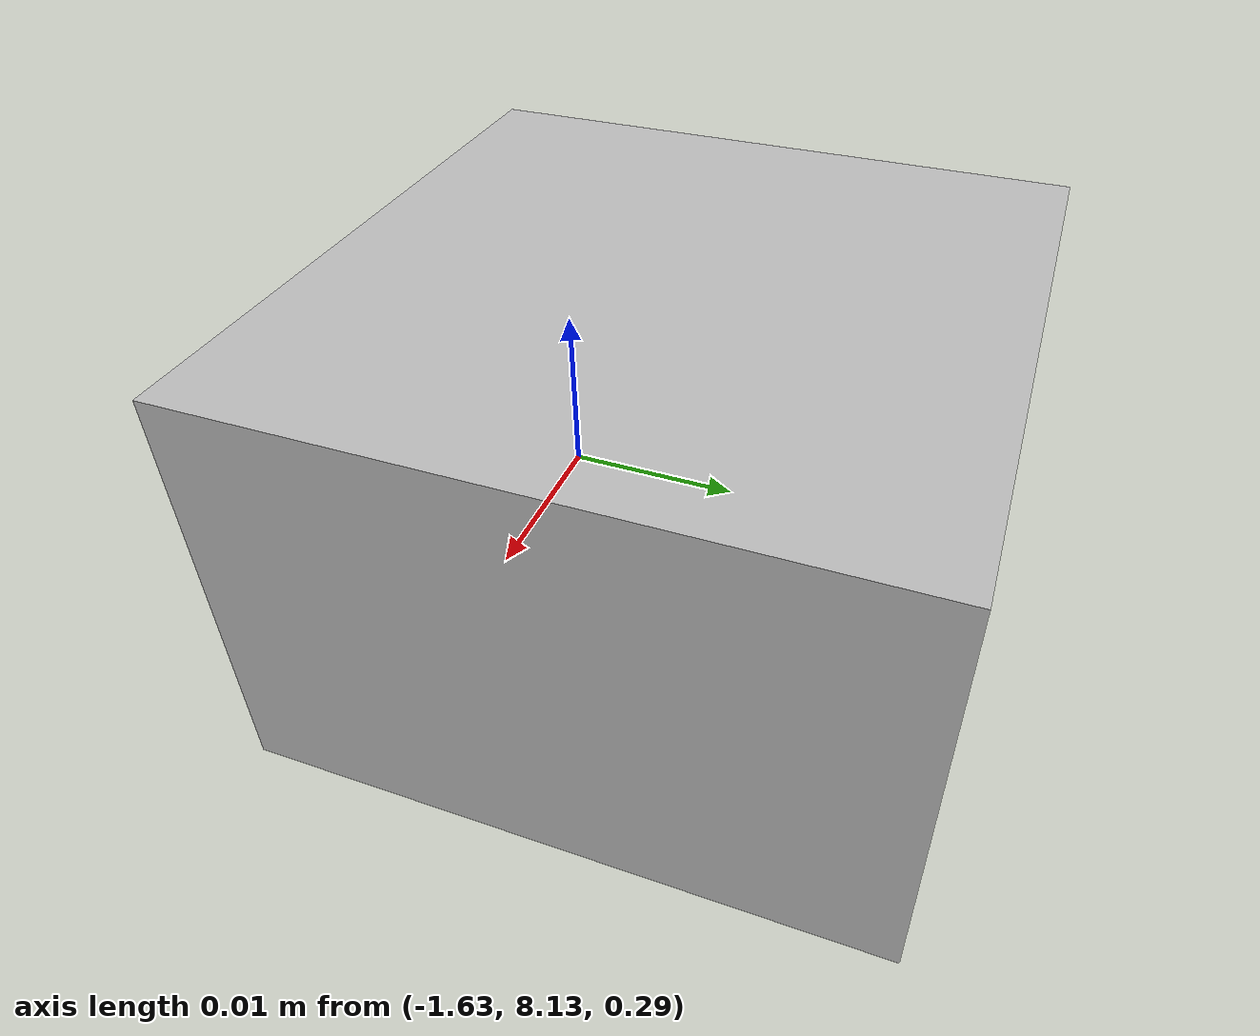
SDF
<sdf version="1.7">
 <world name="default">
  <model name="airport_ground_plane">
   <static>1</static>
   <link name="link">
    <collision name="collision">
     <geometry><plane><normal>0 0 1</normal><size>3700 2000</size></plane></geometry>
     <surface><friction><ode><mu>100</mu><mu2>50</mu2></ode></friction></surface>
    </collision>
    <visual name="visual">
     <cast_shadows>0</cast_shadows>
     <geometry><plane><normal>0 0 1</normal><size>3700 2000</size></plane></geometry>
     <material>
      <script>
       <uri>model://airport_ground_plane/materials/scripts</uri>
       <uri>model://airport_ground_plane/materials/textures/</uri>
       <name>AirportGroundPlane/Image</name>
      </script>
     </material>
    </visual>
   </link>
  </model>
  <gravity>0 0 -9.8</gravity>
  <magnetic_field>6e-06 2.3e-05 -4.2e-05</magnetic_field>
  <atmosphere type="adiabatic"/>
  <physics type="ode">
   <max_step_size>0.001</max_step_size>
   <real_time_factor>1</real_time_factor>
   <real_time_update_rate>1000</real_time_update_rate>
  </physics>
  <scene><ambient>0.4 0.4 0.4 1</ambient><background>0.7 0.7 0.7 1</background><shadows>1</shadows></scene>
  <spherical_coordinates>
   <surface_model>EARTH_WGS84</surface_model>
   <latitude_deg>0</latitude_deg>
   <longitude_deg>0</longitude_deg>
   <elevation>0</elevation>
   <heading_deg>0</heading_deg>
  </spherical_coordinates>
  <model name="airport_light">
   <static>1</static>
   <link name="link">
    <collision name="collision"><geometry><box><size>0.03 0.03 0.02</size></box></geometry></collision>
    <visual name="visual"><geometry><box><size>0.03 0.03 0.02</size></box></geometry></visual>
    <light name="led" type="point">
     <diffuse>1 0 0 1</diffuse>
     <specular>0.8 0.8 0.8 1</specular>
     <attenuation>
      <range>20</range>
      <constant>0.4</constant>
      <linear>0.01</linear>
      <quadratic>0.001</quadratic>
     </attenuation>
     <cast_shadows>0</cast_shadows>
     <direction>0 0 1</direction>
     <spot><inner_angle>0</inner_angle><outer_angle>0</outer_angle><falloff>0</falloff></spot>
    </light>
   </link>
   <pose>-1.61953 8.14012 0.3 0 -0 0</pose>
  </model>
 </world>
</sdf>
